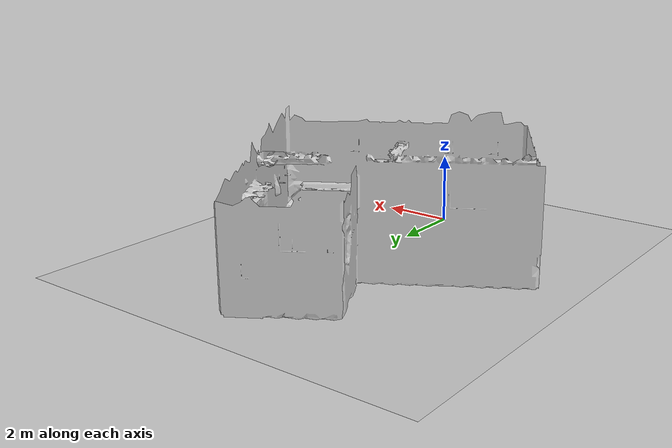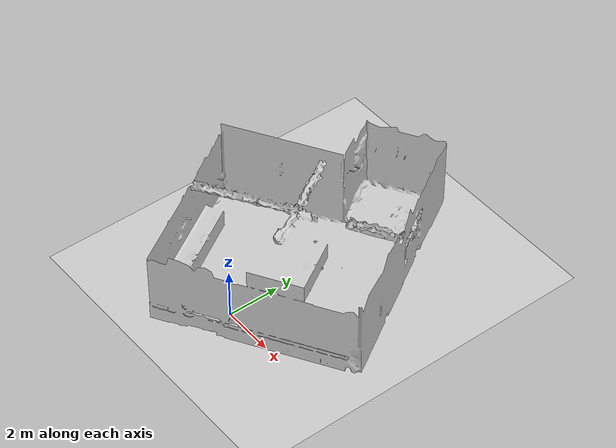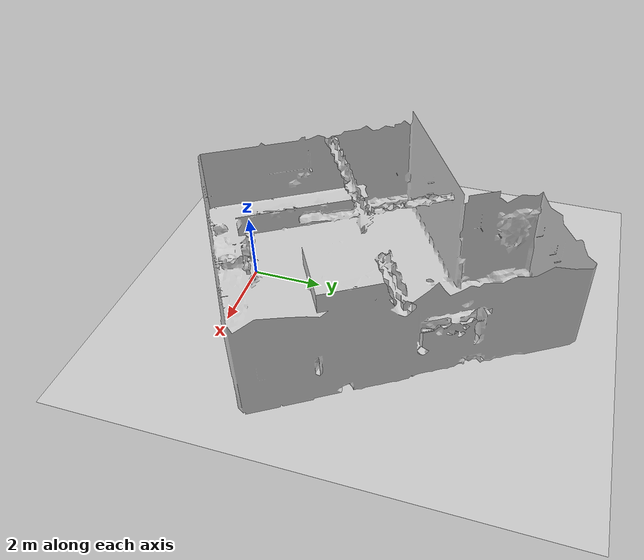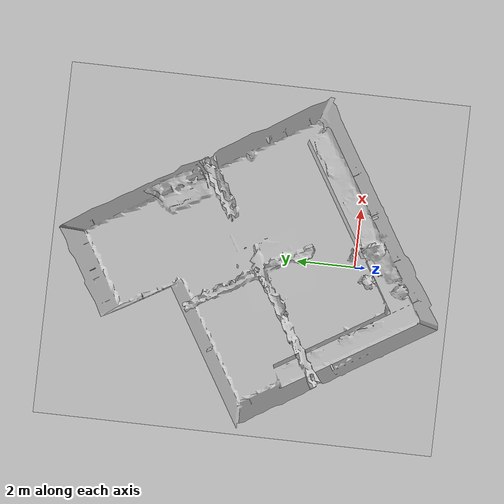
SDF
<!-- Este es el que se esta usando para lidis -->
<?xml version="1.0" ?>
<sdf version="1.6">
  <world name="salon_world">

    <!-- Configuración de físicas -->
    <physics name="default_physics" default="0" type="ode">
      <gravity>0 0 -9.8066</gravity>
      <ode>
        <solver>
          <type>quick</type>
          <iters>150</iters>
          <sor>1.3</sor>
          <use_dynamic_moi_rescaling>0</use_dynamic_moi_rescaling>
        </solver>
        <constraints>
          <cfm>0.00001</cfm>
          <erp>0.2</erp>
          <contact_max_correcting_vel>1000</contact_max_correcting_vel>
          <contact_surface_layer>0.01</contact_surface_layer>
        </constraints>
      </ode>
      <max_step_size>0.004</max_step_size>
      <real_time_factor>1.0</real_time_factor>
      <real_time_update_rate>250</real_time_update_rate>
    </physics>

    <!-- Configuración de rendering -->
    <scene>
      <ambient>0.4 0.4 0.4 1.0</ambient>
      <background>0.7 0.7 0.7 1</background>
      <shadows>1</shadows>
    </scene>

    <!-- Iluminación -->
    <include>
      <uri>model://sun</uri>
    </include>

    <!-- Luz adicional para mejor visibilidad -->
    <light name="user_directional_light_0" type="directional">
      <cast_shadows>1</cast_shadows>
      <pose>0 0 20 0.5 0.5 0</pose>
      <diffuse>0.8 0.8 0.8 1</diffuse>
      <specular>0.2 0.2 0.2 1</specular>
      <attenuation>
        <range>1000</range>
        <constant>0.9</constant>
        <linear>0.01</linear>
        <quadratic>0.001</quadratic>
      </attenuation>
      <direction>-0.5 0.1 -0.9</direction>
    </light>

    <!-- Modelo del salón personalizado -->
    <include>
      <uri>model://salon_model</uri>
      <pose>0 0 0 0 0 0</pose>
      <name>salon_environment</name>
    </include>

    <!-- Plano del suelo (opcional, por si el modelo no lo incluye) -->
    <model name="ground_plane">
      <static>true</static>
      <link name="link">
        <collision name="collision">
          <geometry>
            <plane>
              <normal>0 0 1</normal>
              <size>100 100</size>
            </plane>
          </geometry>
          <surface>
            <friction>
              <ode>
                <mu>100</mu>
                <mu2>50</mu2>
              </ode>
            </friction>
          </surface>
        </collision>
        <visual name="visual">
          <cast_shadows>false</cast_shadows>
          <geometry>
            <plane>
              <normal>0 0 1</normal>
              <size>100 100</size>
            </plane>
          </geometry>
          <material>
            <script>
              <uri>file://media/materials/scripts/gazebo.material</uri>
              <name>Gazebo/Grey</name>
            </script>
          </material>
        </visual>
      </link>
    </model>

    <!-- Plugin para manejo de estado del mundo -->
    <plugin name="gazebo_ros_state" filename="libgazebo_ros_state.so">
      <ros>
        <namespace>/gazebo</namespace>
      </ros>
      <update_rate>1.0</update_rate>
    </plugin>

    <!-- GUI configuración -->
    <gui fullscreen='0'>
      <camera name='user_camera'>
        <pose>5.0 -5.0 3.0 0.0 0.4 2.356</pose>
        <view_controller>orbit</view_controller>
        <projection_type>perspective</projection_type>
      </camera>
    </gui>

  </world>
</sdf>

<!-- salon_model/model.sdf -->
<sdf version="1.6">
  <model name="salon_model">
    <static>true</static>
    <link name="salon_link">
      <pose>0 0 0 0 0 0</pose>

      <!-- Geometría de colisión -->
      <collision name="salon_collision">
        <geometry>
          <mesh>
            <uri>model://salon_model/meshes/salon.dae</uri>
            <scale>1 1 1</scale>
          </mesh>
        </geometry>
        <surface>
          <friction>
            <ode>
              <mu>1.0</mu>
              <mu2>1.0</mu2>
            </ode>
          </friction>
          <contact>
            <ode>
              <kp>10000000</kp>
              <kd>1</kd>
              <min_depth>0.001</min_depth>
            </ode>
          </contact>
          <bounce>
            <restitution_coefficient>0</restitution_coefficient>
            <threshold>1e+06</threshold>
          </bounce>
        </surface>
      </collision>

      <!-- Geometría visual -->
      <visual name="salon_visual">
        <geometry>
          <mesh>
            <uri>model://salon_model/meshes/salon.dae</uri>
            <scale>1 1 1</scale>
          </mesh>
        </geometry>
        <material>
          <ambient>0.8 0.8 0.8 1.0</ambient>
          <diffuse>0.8 0.8 0.8 1.0</diffuse>
          <specular>0.2 0.2 0.2 1.0</specular>
          <emissive>0 0 0 1.0</emissive>
        </material>
        <cast_shadows>true</cast_shadows>
        <transparency>0</transparency>
      </visual>

      <!-- Propiedades inerciales -->
      <inertial>
        <mass>1000</mass>
        <inertia>
          <ixx>1</ixx>
          <ixy>0</ixy>
          <ixz>0</ixz>
          <iyy>1</iyy>
          <iyz>0</iyz>
          <izz>1</izz>
        </inertia>
      </inertial>
    </link>
  </model>
</sdf>
